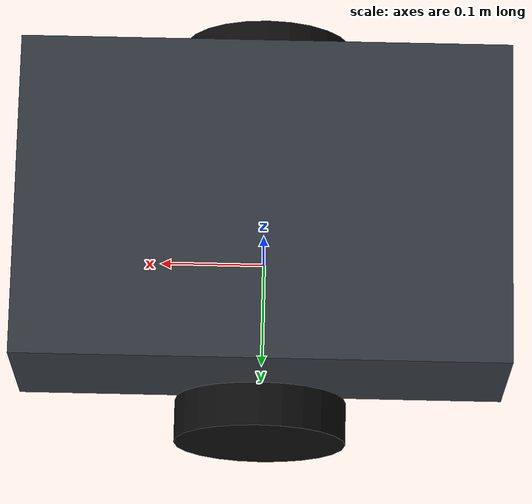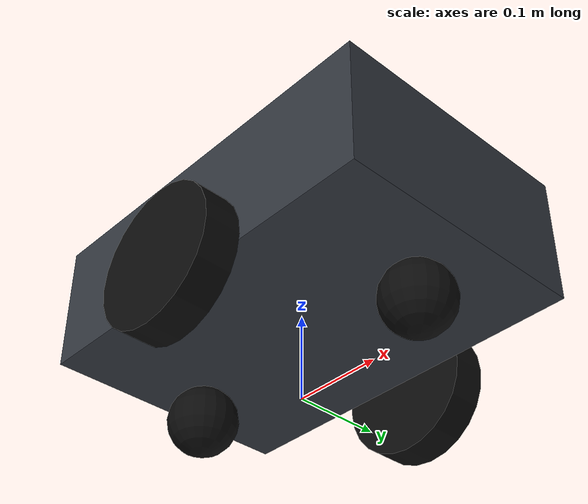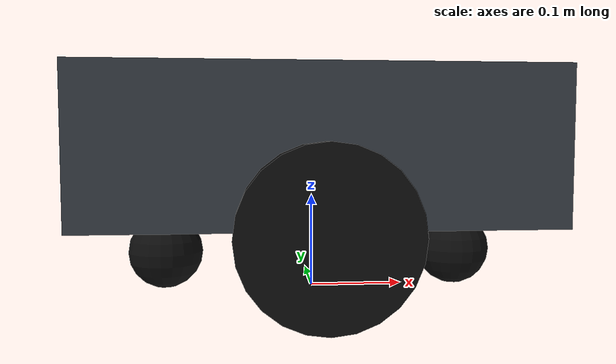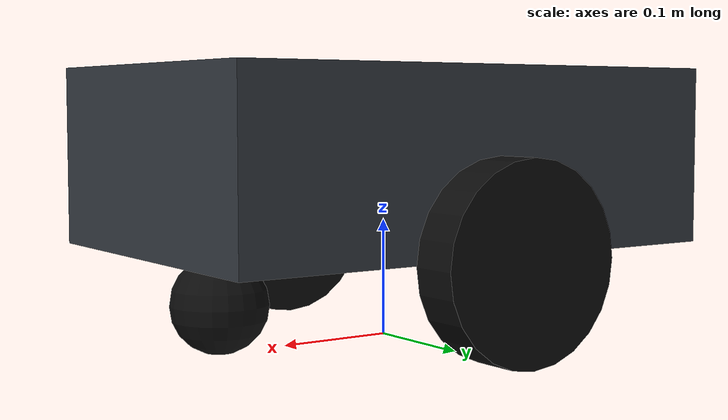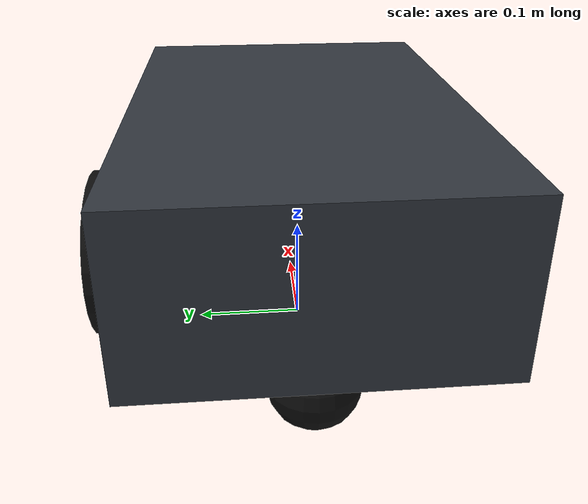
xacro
<?xml version="1.0"?>
<robot xmlns:xacro="http://www.ros.org/wiki/xacro">

  <!-- Inertia macros for geometric primitives -->
  <xacro:macro name="inertial_sphere" params="mass radius *origin">
    <inertial>
      <xacro:insert_block name="origin"/>
      <mass value="${mass}" />
      <inertia ixx="${(2/5) * mass * (radius*radius)}" ixy="0.0" ixz="0.0"
               iyy="${(2/5) * mass * (radius*radius)}" iyz="0.0"
               izz="${(2/5) * mass * (radius*radius)}" />
    </inertial>
  </xacro:macro>

  <xacro:macro name="inertial_box" params="mass x y z *origin">
    <inertial>
      <xacro:insert_block name="origin"/>
      <mass value="${mass}" />
      <inertia ixx="${(1/12) * mass * (y*y + z*z)}" ixy="0.0" ixz="0.0"
               iyy="${(1/12) * mass * (x*x + z*z)}" iyz="0.0"
               izz="${(1/12) * mass * (x*x + y*y)}" />
    </inertial>
  </xacro:macro>

  <xacro:macro name="inertial_cylinder" params="mass length radius *origin">
    <inertial>
      <xacro:insert_block name="origin"/>
      <mass value="${mass}" />
      <inertia ixx="${(1/12) * mass * (3*radius*radius + length*length)}" ixy="0.0" ixz="0.0"
               iyy="${(1/12) * mass * (3*radius*radius + length*length)}" iyz="0.0"
               izz="${(1/2) * mass * (radius*radius)}" />
    </inertial>
  </xacro:macro>

  <!-- Materials -->
  <material name="chassis_grey">
    <color rgba="0.2 0.22 0.25 1.0"/>
  </material>
  <material name="wheel_black">
    <color rgba="0.05 0.05 0.05 1.0"/>
  </material>
  <material name="sensor_blue">
    <color rgba="0.1 0.3 0.8 1.0"/>
  </material>
  <material name="accent_red">
    <color rgba="0.8 0.1 0.1 1.0"/>
  </material>

  <!-- BASE LINK & FOOTPRINT -->
  <link name="base_footprint"/>

  <joint name="base_joint" type="fixed">
    <parent link="base_footprint"/>
    <child link="base_link"/>
    <origin xyz="0 0 0.08" rpy="0 0 0"/>
  </joint>

  <link name="base_link">
    <!-- Main Rugged Chassis -->
    <visual>
      <origin xyz="0 0 0.075" rpy="0 0 0"/>
      <geometry>
        <box size="0.45 0.30 0.15"/>
      </geometry>
      <material name="chassis_grey"/>
    </visual>
    <collision>
      <origin xyz="0 0 0.075" rpy="0 0 0"/>
      <geometry>
        <box size="0.45 0.30 0.15"/>
      </geometry>
    </collision>
    <xacro:inertial_box mass="8.5" x="0.45" y="0.30" z="0.15">
      <origin xyz="0 0 0.075" rpy="0 0 0"/>
    </xacro:inertial_box>
  </link>

  <!-- LEFT DRIVE WHEEL -->
  <joint name="left_wheel_joint" type="continuous">
    <parent link="base_link"/>
    <child link="left_wheel"/>
    <origin xyz="0 0.175 0" rpy="-${pi/2} 0 0"/>
    <axis xyz="0 0 1"/>
  </joint>

  <link name="left_wheel">
    <visual>
      <geometry>
        <cylinder radius="0.08" length="0.04"/>
      </geometry>
      <material name="wheel_black"/>
    </visual>
    <collision>
      <geometry>
        <cylinder radius="0.08" length="0.04"/>
      </geometry>
    </collision>
    <xacro:inertial_cylinder mass="0.8" length="0.04" radius="0.08">
      <origin xyz="0 0 0" rpy="0 0 0"/>
    </xacro:inertial_cylinder>
  </link>

  <!-- RIGHT DRIVE WHEEL -->
  <joint name="right_wheel_joint" type="continuous">
    <parent link="base_link"/>
    <child link="right_wheel"/>
    <origin xyz="0 -0.175 0" rpy="${pi/2} 0 0"/>
    <axis xyz="0 0 -1"/>
  </joint>

  <link name="right_wheel">
    <visual>
      <geometry>
        <cylinder radius="0.08" length="0.04"/>
      </geometry>
      <material name="wheel_black"/>
    </visual>
    <collision>
      <geometry>
        <cylinder radius="0.08" length="0.04"/>
      </geometry>
    </collision>
    <xacro:inertial_cylinder mass="0.8" length="0.04" radius="0.08">
      <origin xyz="0 0 0" rpy="0 0 0"/>
    </xacro:inertial_cylinder>
  </link>

  <!-- FRONT CASTER WHEEL -->
  <joint name="front_caster_joint" type="fixed">
    <parent link="base_link"/>
    <child link="front_caster"/>
    <origin xyz="0.16 0 -0.04" rpy="0 0 0"/>
  </joint>

  <link name="front_caster">
    <visual>
      <geometry>
        <sphere radius="0.04"/>
      </geometry>
      <material name="wheel_black"/>
    </visual>
    <collision>
      <geometry>
        <sphere radius="0.04"/>
      </geometry>
    </collision>
    <xacro:inertial_sphere mass="0.3" radius="0.04">
      <origin xyz="0 0 0" rpy="0 0 0"/>
    </xacro:inertial_sphere>
  </link>

  <!-- REAR CASTER WHEEL -->
  <joint name="rear_caster_joint" type="fixed">
    <parent link="base_link"/>
    <child link="rear_caster"/>
    <origin xyz="-0.16 0 -0.04" rpy="0 0 0"/>
  </joint>

  <link name="rear_caster">
    <visual>
      <geometry>
        <sphere radius="0.04"/>
      </geometry>
      <material name="wheel_black"/>
    </visual>
    <collision>
      <geometry>
        <sphere radius="0.04"/>
      </geometry>
    </collision>
    <xacro:inertial_sphere mass="0.3" radius="0.04">
      <origin xyz="0 0 0" rpy="0 0 0"/>
    </xacro:inertial_sphere>
  </link>

</robot>
